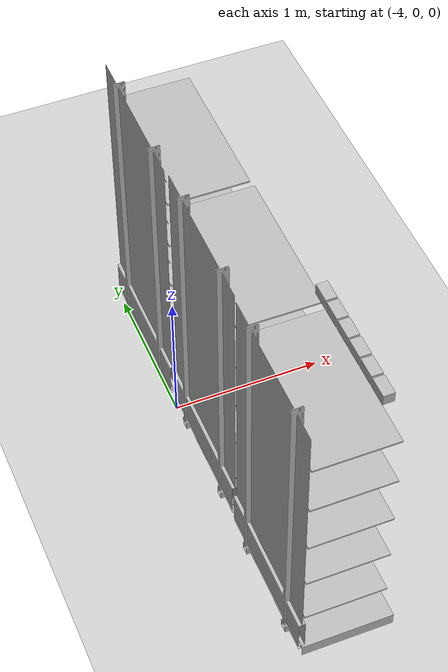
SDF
<sdf version="1.7">
 <world name="default">
  <model name="ground_plane">
   <static>1</static>
   <link name="link">
    <collision name="collision">
     <geometry><plane><normal>0 0 1</normal><size>100 100</size></plane></geometry>
     <surface>
      <contact><collide_bitmask>65535</collide_bitmask></contact>
      <friction><ode><mu>100</mu><mu2>50</mu2></ode></friction>
     </surface>
    </collision>
    <visual name="visual">
     <cast_shadows>0</cast_shadows>
     <geometry><plane><normal>0 0 1</normal><size>100 100</size></plane></geometry>
     <material>
      <script><uri>file://media/materials/scripts/gazebo.material</uri><name>Gazebo/Grey</name></script>
     </material>
    </visual>
   </link>
  </model>
  <model name="AH_shelf_filled_april">
   <static>1</static>
   <link name="link">
    <inertial>
     <mass>1</mass>
     <inertia><ixx>1</ixx><ixy>0</ixy><ixz>0</ixz><iyy>1</iyy><iyz>0</iyz><izz>1</izz></inertia>
    </inertial>
    <visual name="visual">
     <geometry><mesh><uri>model://AH_shelf/AH_shelf.dae</uri><scale>1 1 1</scale></mesh></geometry>
    </visual>
    <collision name="collision">
     <geometry><mesh><uri>model://AH_shelf/AH_shelf.dae</uri><scale>1 1 1</scale></mesh></geometry>
     <surface>
      <friction>
       <ode><mu>1</mu><mu2>1</mu2><fdir1>0 0 0</fdir1><slip1>0</slip1><slip2>0</slip2></ode>
       <torsional>
        <coefficient>1</coefficient>
        <patch_radius>0</patch_radius>
        <surface_radius>0</surface_radius>
        <use_patch_radius>1</use_patch_radius>
        <ode><slip>0</slip></ode>
       </torsional>
      </friction>
      <bounce><restitution_coefficient>0</restitution_coefficient><threshold>1e+06</threshold></bounce>
      <contact>
       <collide_without_contact>0</collide_without_contact>
       <collide_without_contact_bitmask>1</collide_without_contact_bitmask>
       <collide_bitmask>1</collide_bitmask>
       <ode>
        <soft_cfm>0</soft_cfm>
        <soft_erp>0.2</soft_erp>
        <kp>1e+13</kp>
        <kd>1</kd>
        <max_vel>0.01</max_vel>
        <min_depth>0</min_depth>
       </ode>
       <bullet>
        <split_impulse>1</split_impulse>
        <split_impulse_penetration_threshold>-0.01</split_impulse_penetration_threshold>
        <soft_cfm>0</soft_cfm>
        <soft_erp>0.2</soft_erp>
        <kp>1e+13</kp>
        <kd>1</kd>
       </bullet>
      </contact>
     </surface>
    </collision>
   </link>
   <pose>-4.01107 0.02378 0 0 0 -1.5708</pose>
  </model>
  <model name="AH_shelf_filled">
   <static>1</static>
   <link name="link">
    <inertial>
     <mass>1</mass>
     <inertia><ixx>1</ixx><ixy>0</ixy><ixz>0</ixz><iyy>1</iyy><iyz>0</iyz><izz>1</izz></inertia>
    </inertial>
    <visual name="visual">
     <geometry><mesh><uri>model://AH_shelf/AH_shelf.dae</uri><scale>1 1 1</scale></mesh></geometry>
    </visual>
    <collision name="collision">
     <geometry><mesh><uri>model://AH_shelf/AH_shelf.dae</uri><scale>1 1 1</scale></mesh></geometry>
     <surface>
      <friction>
       <ode><mu>1</mu><mu2>1</mu2><fdir1>0 0 0</fdir1><slip1>0</slip1><slip2>0</slip2></ode>
       <torsional>
        <coefficient>1</coefficient>
        <patch_radius>0</patch_radius>
        <surface_radius>0</surface_radius>
        <use_patch_radius>1</use_patch_radius>
        <ode><slip>0</slip></ode>
       </torsional>
      </friction>
      <bounce><restitution_coefficient>0</restitution_coefficient><threshold>1e+06</threshold></bounce>
      <contact>
       <collide_without_contact>0</collide_without_contact>
       <collide_without_contact_bitmask>1</collide_without_contact_bitmask>
       <collide_bitmask>1</collide_bitmask>
       <ode>
        <soft_cfm>0</soft_cfm>
        <soft_erp>0.2</soft_erp>
        <kp>1e+13</kp>
        <kd>1</kd>
        <max_vel>0.01</max_vel>
        <min_depth>0</min_depth>
       </ode>
       <bullet>
        <split_impulse>1</split_impulse>
        <split_impulse_penetration_threshold>-0.01</split_impulse_penetration_threshold>
        <soft_cfm>0</soft_cfm>
        <soft_erp>0.2</soft_erp>
        <kp>1e+13</kp>
        <kd>1</kd>
       </bullet>
      </contact>
     </surface>
    </collision>
   </link>
   <model name="board6">
    <pose>0 0.5 2.1 0 -0 0</pose>
    <static>0</static>
    <link name="AH_thee_mango::link_0">
     <inertial>
      <mass>0.1</mass>
      <inertia><ixx>0.0014</ixx><ixy>0</ixy><ixz>0</ixz><iyy>0.0014</iyy><iyz>0</iyz><izz>0.0028</izz></inertia>
     </inertial>
     <pose>0.142857 0 0 0 -0 1.57</pose>
     <visual name="visual">
      <geometry>
       <mesh><uri>model://AH_thee_mango/AH_thee_mango/AH_thee_mango.dae</uri><scale>1 1 1</scale></mesh>
      </geometry>
     </visual>
     <collision name="collision">
      <geometry>
       <mesh><uri>model://AH_thee_mango/AH_thee_mango/AH_thee_mango.dae</uri><scale>1 1 1</scale></mesh>
      </geometry>
      <surface>
       <friction>
        <ode><mu>1</mu><mu2>1</mu2><fdir1>0 0 0</fdir1><slip1>0</slip1><slip2>0</slip2></ode>
        <torsional>
         <coefficient>1</coefficient>
         <patch_radius>0</patch_radius>
         <surface_radius>0</surface_radius>
         <use_patch_radius>1</use_patch_radius>
         <ode><slip>0</slip></ode>
        </torsional>
       </friction>
       <bounce><restitution_coefficient>0</restitution_coefficient><threshold>1e+06</threshold></bounce>
       <contact>
        <collide_without_contact>0</collide_without_contact>
        <collide_without_contact_bitmask>1</collide_without_contact_bitmask>
        <collide_bitmask>1</collide_bitmask>
        <ode>
         <soft_cfm>0</soft_cfm>
         <soft_erp>0.2</soft_erp>
         <kp>1e+13</kp>
         <kd>1</kd>
         <max_vel>0.01</max_vel>
         <min_depth>0</min_depth>
        </ode>
        <bullet>
         <split_impulse>1</split_impulse>
         <split_impulse_penetration_threshold>-0.01</split_impulse_penetration_threshold>
         <soft_cfm>0</soft_cfm>
         <soft_erp>0.2</soft_erp>
         <kp>1e+13</kp>
         <kd>1</kd>
        </bullet>
       </contact>
      </surface>
     </collision>
    </link>
    <static>0</static>
    <link name="AH_thee_mango::link_0">
     <inertial>
      <mass>0.1</mass>
      <inertia><ixx>0.0014</ixx><ixy>0</ixy><ixz>0</ixz><iyy>0.0014</iyy><iyz>0</iyz><izz>0.0028</izz></inertia>
     </inertial>
     <pose>0.285714 0 0 0 -0 1.57</pose>
     <visual name="visual">
      <geometry>
       <mesh><uri>model://AH_thee_mango/AH_thee_mango/AH_thee_mango.dae</uri><scale>1 1 1</scale></mesh>
      </geometry>
     </visual>
     <collision name="collision">
      <geometry>
       <mesh><uri>model://AH_thee_mango/AH_thee_mango/AH_thee_mango.dae</uri><scale>1 1 1</scale></mesh>
      </geometry>
      <surface>
       <friction>
        <ode><mu>1</mu><mu2>1</mu2><fdir1>0 0 0</fdir1><slip1>0</slip1><slip2>0</slip2></ode>
        <torsional>
         <coefficient>1</coefficient>
         <patch_radius>0</patch_radius>
         <surface_radius>0</surface_radius>
         <use_patch_radius>1</use_patch_radius>
         <ode><slip>0</slip></ode>
        </torsional>
       </friction>
       <bounce><restitution_coefficient>0</restitution_coefficient><threshold>1e+06</threshold></bounce>
       <contact>
        <collide_without_contact>0</collide_without_contact>
        <collide_without_contact_bitmask>1</collide_without_contact_bitmask>
        <collide_bitmask>1</collide_bitmask>
        <ode>
         <soft_cfm>0</soft_cfm>
         <soft_erp>0.2</soft_erp>
         <kp>1e+13</kp>
         <kd>1</kd>
         <max_vel>0.01</max_vel>
         <min_depth>0</min_depth>
        </ode>
        <bullet>
         <split_impulse>1</split_impulse>
         <split_impulse_penetration_threshold>-0.01</split_impulse_penetration_threshold>
         <soft_cfm>0</soft_cfm>
         <soft_erp>0.2</soft_erp>
         <kp>1e+13</kp>
         <kd>1</kd>
        </bullet>
       </contact>
      </surface>
     </collision>
    </link>
    <static>0</static>
    <link name="AH_thee_mango::link_0">
     <inertial>
      <mass>0.1</mass>
      <inertia><ixx>0.0014</ixx><ixy>0</ixy><ixz>0</ixz><iyy>0.0014</iyy><iyz>0</iyz><izz>0.0028</izz></inertia>
     </inertial>
     <pose>0.428571 0 0 0 -0 1.57</pose>
     <visual name="visual">
      <geometry>
       <mesh><uri>model://AH_thee_mango/AH_thee_mango/AH_thee_mango.dae</uri><scale>1 1 1</scale></mesh>
      </geometry>
     </visual>
     <collision name="collision">
      <geometry>
       <mesh><uri>model://AH_thee_mango/AH_thee_mango/AH_thee_mango.dae</uri><scale>1 1 1</scale></mesh>
      </geometry>
      <surface>
       <friction>
        <ode><mu>1</mu><mu2>1</mu2><fdir1>0 0 0</fdir1><slip1>0</slip1><slip2>0</slip2></ode>
        <torsional>
         <coefficient>1</coefficient>
         <patch_radius>0</patch_radius>
         <surface_radius>0</surface_radius>
         <use_patch_radius>1</use_patch_radius>
         <ode><slip>0</slip></ode>
        </torsional>
       </friction>
       <bounce><restitution_coefficient>0</restitution_coefficient><threshold>1e+06</threshold></bounce>
       <contact>
        <collide_without_contact>0</collide_without_contact>
        <collide_without_contact_bitmask>1</collide_without_contact_bitmask>
        <collide_bitmask>1</collide_bitmask>
        <ode>
         <soft_cfm>0</soft_cfm>
         <soft_erp>0.2</soft_erp>
         <kp>1e+13</kp>
         <kd>1</kd>
         <max_vel>0.01</max_vel>
         <min_depth>0</min_depth>
        </ode>
        <bullet>
         <split_impulse>1</split_impulse>
         <split_impulse_penetration_threshold>-0.01</split_impulse_penetration_threshold>
         <soft_cfm>0</soft_cfm>
         <soft_erp>0.2</soft_erp>
         <kp>1e+13</kp>
         <kd>1</kd>
        </bullet>
       </contact>
      </surface>
     </collision>
    </link>
    <static>0</static>
    <link name="AH_thee_mango::link_0">
     <inertial>
      <mass>0.1</mass>
      <inertia><ixx>0.0014</ixx><ixy>0</ixy><ixz>0</ixz><iyy>0.0014</iyy><iyz>0</iyz><izz>0.0028</izz></inertia>
     </inertial>
     <pose>0.571429 0 0 0 -0 1.57</pose>
     <visual name="visual">
      <geometry>
       <mesh><uri>model://AH_thee_mango/AH_thee_mango/AH_thee_mango.dae</uri><scale>1 1 1</scale></mesh>
      </geometry>
     </visual>
     <collision name="collision">
      <geometry>
       <mesh><uri>model://AH_thee_mango/AH_thee_mango/AH_thee_mango.dae</uri><scale>1 1 1</scale></mesh>
      </geometry>
      <surface>
       <friction>
        <ode><mu>1</mu><mu2>1</mu2><fdir1>0 0 0</fdir1><slip1>0</slip1><slip2>0</slip2></ode>
        <torsional>
         <coefficient>1</coefficient>
         <patch_radius>0</patch_radius>
         <surface_radius>0</surface_radius>
         <use_patch_radius>1</use_patch_radius>
         <ode><slip>0</slip></ode>
        </torsional>
       </friction>
       <bounce><restitution_coefficient>0</restitution_coefficient><threshold>1e+06</threshold></bounce>
       <contact>
        <collide_without_contact>0</collide_without_contact>
        <collide_without_contact_bitmask>1</collide_without_contact_bitmask>
        <collide_bitmask>1</collide_bitmask>
        <ode>
         <soft_cfm>0</soft_cfm>
         <soft_erp>0.2</soft_erp>
         <kp>1e+13</kp>
         <kd>1</kd>
         <max_vel>0.01</max_vel>
         <min_depth>0</min_depth>
        </ode>
        <bullet>
         <split_impulse>1</split_impulse>
         <split_impulse_penetration_threshold>-0.01</split_impulse_penetration_threshold>
         <soft_cfm>0</soft_cfm>
         <soft_erp>0.2</soft_erp>
         <kp>1e+13</kp>
         <kd>1</kd>
        </bullet>
       </contact>
      </surface>
     </collision>
    </link>
    <static>0</static>
    <link name="AH_thee_mango::link_0">
     <inertial>
      <mass>0.1</mass>
      <inertia><ixx>0.0014</ixx><ixy>0</ixy><ixz>0</ixz><iyy>0.0014</iyy><iyz>0</iyz><izz>0.0028</izz></inertia>
     </inertial>
     <pose>0.714286 0 0 0 -0 1.57</pose>
     <visual name="visual">
      <geometry>
       <mesh><uri>model://AH_thee_mango/AH_thee_mango/AH_thee_mango.dae</uri><scale>1 1 1</scale></mesh>
      </geometry>
     </visual>
     <collision name="collision">
      <geometry>
       <mesh><uri>model://AH_thee_mango/AH_thee_mango/AH_thee_mango.dae</uri><scale>1 1 1</scale></mesh>
      </geometry>
      <surface>
       <friction>
        <ode><mu>1</mu><mu2>1</mu2><fdir1>0 0 0</fdir1><slip1>0</slip1><slip2>0</slip2></ode>
        <torsional>
         <coefficient>1</coefficient>
         <patch_radius>0</patch_radius>
         <surface_radius>0</surface_radius>
         <use_patch_radius>1</use_patch_radius>
         <ode><slip>0</slip></ode>
        </torsional>
       </friction>
       <bounce><restitution_coefficient>0</restitution_coefficient><threshold>1e+06</threshold></bounce>
       <contact>
        <collide_without_contact>0</collide_without_contact>
        <collide_without_contact_bitmask>1</collide_without_contact_bitmask>
        <collide_bitmask>1</collide_bitmask>
        <ode>
         <soft_cfm>0</soft_cfm>
         <soft_erp>0.2</soft_erp>
         <kp>1e+13</kp>
         <kd>1</kd>
         <max_vel>0.01</max_vel>
         <min_depth>0</min_depth>
        </ode>
        <bullet>
         <split_impulse>1</split_impulse>
         <split_impulse_penetration_threshold>-0.01</split_impulse_penetration_threshold>
         <soft_cfm>0</soft_cfm>
         <soft_erp>0.2</soft_erp>
         <kp>1e+13</kp>
         <kd>1</kd>
        </bullet>
       </contact>
      </surface>
     </collision>
    </link>
    <static>0</static>
    <link name="AH_thee_mango::link_0">
     <inertial>
      <mass>0.1</mass>
      <inertia><ixx>0.0014</ixx><ixy>0</ixy><ixz>0</ixz><iyy>0.0014</iyy><iyz>0</iyz><izz>0.0028</izz></inertia>
     </inertial>
     <pose>0.857143 0 0 0 -0 1.57</pose>
     <visual name="visual">
      <geometry>
       <mesh><uri>model://AH_thee_mango/AH_thee_mango/AH_thee_mango.dae</uri><scale>1 1 1</scale></mesh>
      </geometry>
     </visual>
     <collision name="collision">
      <geometry>
       <mesh><uri>model://AH_thee_mango/AH_thee_mango/AH_thee_mango.dae</uri><scale>1 1 1</scale></mesh>
      </geometry>
      <surface>
       <friction>
        <ode><mu>1</mu><mu2>1</mu2><fdir1>0 0 0</fdir1><slip1>0</slip1><slip2>0</slip2></ode>
        <torsional>
         <coefficient>1</coefficient>
         <patch_radius>0</patch_radius>
         <surface_radius>0</surface_radius>
         <use_patch_radius>1</use_patch_radius>
         <ode><slip>0</slip></ode>
        </torsional>
       </friction>
       <bounce><restitution_coefficient>0</restitution_coefficient><threshold>1e+06</threshold></bounce>
       <contact>
        <collide_without_contact>0</collide_without_contact>
        <collide_without_contact_bitmask>1</collide_without_contact_bitmask>
        <collide_bitmask>1</collide_bitmask>
        <ode>
         <soft_cfm>0</soft_cfm>
         <soft_erp>0.2</soft_erp>
         <kp>1e+13</kp>
         <kd>1</kd>
         <max_vel>0.01</max_vel>
         <min_depth>0</min_depth>
        </ode>
        <bullet>
         <split_impulse>1</split_impulse>
         <split_impulse_penetration_threshold>-0.01</split_impulse_penetration_threshold>
         <soft_cfm>0</soft_cfm>
         <soft_erp>0.2</soft_erp>
         <kp>1e+13</kp>
         <kd>1</kd>
        </bullet>
       </contact>
      </surface>
     </collision>
    </link>
   </model>
   <pose>-4.02831 -1.03085 0 0 0 -1.5708</pose>
  </model>
  <model name="AH_shelf_filled_0">
   <static>1</static>
   <link name="link">
    <inertial>
     <mass>1</mass>
     <inertia><ixx>1</ixx><ixy>0</ixy><ixz>0</ixz><iyy>1</iyy><iyz>0</iyz><izz>1</izz></inertia>
    </inertial>
    <visual name="visual">
     <geometry><mesh><uri>model://AH_shelf/AH_shelf.dae</uri><scale>1 1 1</scale></mesh></geometry>
    </visual>
    <collision name="collision">
     <geometry><mesh><uri>model://AH_shelf/AH_shelf.dae</uri><scale>1 1 1</scale></mesh></geometry>
     <surface>
      <friction>
       <ode><mu>1</mu><mu2>1</mu2><fdir1>0 0 0</fdir1><slip1>0</slip1><slip2>0</slip2></ode>
       <torsional>
        <coefficient>1</coefficient>
        <patch_radius>0</patch_radius>
        <surface_radius>0</surface_radius>
        <use_patch_radius>1</use_patch_radius>
        <ode><slip>0</slip></ode>
       </torsional>
      </friction>
      <bounce><restitution_coefficient>0</restitution_coefficient><threshold>1e+06</threshold></bounce>
      <contact>
       <collide_without_contact>0</collide_without_contact>
       <collide_without_contact_bitmask>1</collide_without_contact_bitmask>
       <collide_bitmask>1</collide_bitmask>
       <ode>
        <soft_cfm>0</soft_cfm>
        <soft_erp>0.2</soft_erp>
        <kp>1e+13</kp>
        <kd>1</kd>
        <max_vel>0.01</max_vel>
        <min_depth>0</min_depth>
       </ode>
       <bullet>
        <split_impulse>1</split_impulse>
        <split_impulse_penetration_threshold>-0.01</split_impulse_penetration_threshold>
        <soft_cfm>0</soft_cfm>
        <soft_erp>0.2</soft_erp>
        <kp>1e+13</kp>
        <kd>1</kd>
       </bullet>
      </contact>
     </surface>
    </collision>
   </link>
   <pose>-4.01662 1.07063 0 0 0 -1.5708</pose>
  </model>
  <model name="AH_shelf_filled_1">
   <static>1</static>
   <model name="board1">
    <pose>0 0.5 0.25 0 -0 0</pose>
    <static>0</static>
    <link name="AH_hagelslag_puur::link_0">
     <inertial>
      <mass>0.1</mass>
      <inertia><ixx>0.0014</ixx><ixy>0</ixy><ixz>0</ixz><iyy>0.0014</iyy><iyz>0</iyz><izz>0.0028</izz></inertia>
     </inertial>
     <pose>0.111111 0 0 0 -0 1.57</pose>
     <visual name="visual">
      <geometry>
       <mesh><uri>model://AH_hagelslag_puur/AH_hagelslag_puur/AH_hagelslag_puur.dae</uri><scale>1 1 1</scale></mesh>
      </geometry>
     </visual>
     <collision name="collision">
      <geometry>
       <mesh><uri>model://AH_hagelslag_puur/AH_hagelslag_puur/AH_hagelslag_puur.dae</uri><scale>1 1 1</scale></mesh>
      </geometry>
      <surface>
       <friction>
        <ode><mu>1</mu><mu2>1</mu2><fdir1>0 0 0</fdir1><slip1>0</slip1><slip2>0</slip2></ode>
        <torsional>
         <coefficient>1</coefficient>
         <patch_radius>0</patch_radius>
         <surface_radius>0</surface_radius>
         <use_patch_radius>1</use_patch_radius>
         <ode><slip>0</slip></ode>
        </torsional>
       </friction>
       <bounce><restitution_coefficient>0</restitution_coefficient><threshold>1e+06</threshold></bounce>
       <contact>
        <collide_without_contact>0</collide_without_contact>
        <collide_without_contact_bitmask>1</collide_without_contact_bitmask>
        <collide_bitmask>1</collide_bitmask>
        <ode>
         <soft_cfm>0</soft_cfm>
         <soft_erp>0.2</soft_erp>
         <kp>1e+13</kp>
         <kd>1</kd>
         <max_vel>0.01</max_vel>
         <min_depth>0</min_depth>
        </ode>
        <bullet>
         <split_impulse>1</split_impulse>
         <split_impulse_penetration_threshold>-0.01</split_impulse_penetration_threshold>
         <soft_cfm>0</soft_cfm>
         <soft_erp>0.2</soft_erp>
         <kp>1e+13</kp>
         <kd>1</kd>
        </bullet>
       </contact>
      </surface>
     </collision>
    </link>
    <static>0</static>
    <link name="AH_hagelslag_puur::link_0">
     <inertial>
      <mass>0.1</mass>
      <inertia><ixx>0.0014</ixx><ixy>0</ixy><ixz>0</ixz><iyy>0.0014</iyy><iyz>0</iyz><izz>0.0028</izz></inertia>
     </inertial>
     <pose>0.222222 0 0 0 -0 1.57</pose>
     <visual name="visual">
      <geometry>
       <mesh><uri>model://AH_hagelslag_puur/AH_hagelslag_puur/AH_hagelslag_puur.dae</uri><scale>1 1 1</scale></mesh>
      </geometry>
     </visual>
     <collision name="collision">
      <geometry>
       <mesh><uri>model://AH_hagelslag_puur/AH_hagelslag_puur/AH_hagelslag_puur.dae</uri><scale>1 1 1</scale></mesh>
      </geometry>
      <surface>
       <friction>
        <ode><mu>1</mu><mu2>1</mu2><fdir1>0 0 0</fdir1><slip1>0</slip1><slip2>0</slip2></ode>
        <torsional>
         <coefficient>1</coefficient>
         <patch_radius>0</patch_radius>
         <surface_radius>0</surface_radius>
         <use_patch_radius>1</use_patch_radius>
         <ode><slip>0</slip></ode>
        </torsional>
       </friction>
       <bounce><restitution_coefficient>0</restitution_coefficient><threshold>1e+06</threshold></bounce>
       <contact>
        <collide_without_contact>0</collide_without_contact>
        <collide_without_contact_bitmask>1</collide_without_contact_bitmask>
        <collide_bitmask>1</collide_bitmask>
        <ode>
         <soft_cfm>0</soft_cfm>
         <soft_erp>0.2</soft_erp>
         <kp>1e+13</kp>
         <kd>1</kd>
         <max_vel>0.01</max_vel>
         <min_depth>0</min_depth>
        </ode>
        <bullet>
         <split_impulse>1</split_impulse>
         <split_impulse_penetration_threshold>-0.01</split_impulse_penetration_threshold>
         <soft_cfm>0</soft_cfm>
         <soft_erp>0.2</soft_erp>
         <kp>1e+13</kp>
         <kd>1</kd>
        </bullet>
       </contact>
      </surface>
     </collision>
    </link>
    <static>0</static>
    <link name="AH_hagelslag_puur::link_0">
     <inertial>
      <mass>0.1</mass>
      <inertia><ixx>0.0014</ixx><ixy>0</ixy><ixz>0</ixz><iyy>0.0014</iyy><iyz>0</iyz><izz>0.0028</izz></inertia>
     </inertial>
     <pose>0.333333 0 0 0 -0 1.57</pose>
     <visual name="visual">
      <geometry>
       <mesh><uri>model://AH_hagelslag_puur/AH_hagelslag_puur/AH_hagelslag_puur.dae</uri><scale>1 1 1</scale></mesh>
      </geometry>
     </visual>
     <collision name="collision">
      <geometry>
       <mesh><uri>model://AH_hagelslag_puur/AH_hagelslag_puur/AH_hagelslag_puur.dae</uri><scale>1 1 1</scale></mesh>
      </geometry>
      <surface>
       <friction>
        <ode><mu>1</mu><mu2>1</mu2><fdir1>0 0 0</fdir1><slip1>0</slip1><slip2>0</slip2></ode>
        <torsional>
         <coefficient>1</coefficient>
         <patch_radius>0</patch_radius>
         <surface_radius>0</surface_radius>
         <use_patch_radius>1</use_patch_radius>
         <ode><slip>0</slip></ode>
        </torsional>
       </friction>
       <bounce><restitution_coefficient>0</restitution_coefficient><threshold>1e+06</threshold></bounce>
       <contact>
        <collide_without_contact>0</collide_without_contact>
        <collide_without_contact_bitmask>1</collide_without_contact_bitmask>
        <collide_bitmask>1</collide_bitmask>
        <ode>
         <soft_cfm>0</soft_cfm>
         <soft_erp>0.2</soft_erp>
         <kp>1e+13</kp>
         <kd>1</kd>
         <max_vel>0.01</max_vel>
         <min_depth>0</min_depth>
        </ode>
        <bullet>
         <split_impulse>1</split_impulse>
         <split_impulse_penetration_threshold>-0.01</split_impulse_penetration_threshold>
         <soft_cfm>0</soft_cfm>
         <soft_erp>0.2</soft_erp>
         <kp>1e+13</kp>
         <kd>1</kd>
        </bullet>
       </contact>
      </surface>
     </collision>
    </link>
    <static>0</static>
    <link name="AH_hagelslag_puur::link_0">
     <inertial>
      <mass>0.1</mass>
      <inertia><ixx>0.0014</ixx><ixy>0</ixy><ixz>0</ixz><iyy>0.0014</iyy><iyz>0</iyz><izz>0.0028</izz></inertia>
     </inertial>
     <pose>0.444444 0 0 0 -0 1.57</pose>
     <visual name="visual">
      <geometry>
       <mesh><uri>model://AH_hagelslag_puur/AH_hagelslag_puur/AH_hagelslag_puur.dae</uri><scale>1 1 1</scale></mesh>
      </geometry>
     </visual>
     <collision name="collision">
      <geometry>
       <mesh><uri>model://AH_hagelslag_puur/AH_hagelslag_puur/AH_hagelslag_puur.dae</uri><scale>1 1 1</scale></mesh>
      </geometry>
      <surface>
       <friction>
        <ode><mu>1</mu><mu2>1</mu2><fdir1>0 0 0</fdir1><slip1>0</slip1><slip2>0</slip2></ode>
        <torsional>
         <coefficient>1</coefficient>
         <patch_radius>0</patch_radius>
         <surface_radius>0</surface_radius>
         <use_patch_radius>1</use_patch_radius>
         <ode><slip>0</slip></ode>
        </torsional>
       </friction>
       <bounce><restitution_coefficient>0</restitution_coefficient><threshold>1e+06</threshold></bounce>
       <contact>
        <collide_without_contact>0</collide_without_contact>
        <collide_without_contact_bitmask>1</collide_without_contact_bitmask>
        <collide_bitmask>1</collide_bitmask>
        <ode>
         <soft_cfm>0</soft_cfm>
         <soft_erp>0.2</soft_erp>
         <kp>1e+13</kp>
         <kd>1</kd>
         <max_vel>0.01</max_vel>
         <min_depth>0</min_depth>
        </ode>
        <bullet>
         <split_impulse>1</split_impulse>
         <split_impulse_penetration_threshold>-0.01</split_impulse_penetration_threshold>
         <soft_cfm>0</soft_cfm>
         <soft_erp>0.2</soft_erp>
         <kp>1e+13</kp>
         <kd>1</kd>
        </bullet>
       </contact>
      </surface>
     </collision>
    </link>
    <static>0</static>
    <link name="AH_hagelslag_puur::link_0">
     <inertial>
      <mass>0.1</mass>
      <inertia><ixx>0.0014</ixx><ixy>0</ixy><ixz>0</ixz><iyy>0.0014</iyy><iyz>0</iyz><izz>0.0028</izz></inertia>
     </inertial>
     <pose>0.555556 0 0 0 -0 1.57</pose>
     <visual name="visual">
      <geometry>
       <mesh><uri>model://AH_hagelslag_puur/AH_hagelslag_puur/AH_hagelslag_puur.dae</uri><scale>1 1 1</scale></mesh>
      </geometry>
     </visual>
     <collision name="collision">
      <geometry>
       <mesh><uri>model://AH_hagelslag_puur/AH_hagelslag_puur/AH_hagelslag_puur.dae</uri><scale>1 1 1</scale></mesh>
      </geometry>
      <surface>
       <friction>
        <ode><mu>1</mu><mu2>1</mu2><fdir1>0 0 0</fdir1><slip1>0</slip1><slip2>0</slip2></ode>
        <torsional>
         <coefficient>1</coefficient>
         <patch_radius>0</patch_radius>
         <surface_radius>0</surface_radius>
         <use_patch_radius>1</use_patch_radius>
         <ode><slip>0</slip></ode>
        </torsional>
       </friction>
       <bounce><restitution_coefficient>0</restitution_coefficient><threshold>1e+06</threshold></bounce>
       <contact>
        <collide_without_contact>0</collide_without_contact>
        <collide_without_contact_bitmask>1</collide_without_contact_bitmask>
        <collide_bitmask>1</collide_bitmask>
        <ode>
         <soft_cfm>0</soft_cfm>
         <soft_erp>0.2</soft_erp>
         <kp>1e+13</kp>
         <kd>1</kd>
         <max_vel>0.01</max_vel>
         <min_depth>0</min_depth>
        </ode>
        <bullet>
         <split_impulse>1</split_impulse>
         <split_impulse_penetration_threshold>-0.01</split_impulse_penetration_threshold>
         <soft_cfm>0</soft_cfm>
         <soft_erp>0.2</soft_erp>
         <kp>1e+13</kp>
         <kd>1</kd>
        </bullet>
       </contact>
      </surface>
     </collision>
    </link>
    <static>0</static>
    <link name="AH_hagelslag_puur::link_0">
     <inertial>
      <mass>0.1</mass>
      <inertia><ixx>0.0014</ixx><ixy>0</ixy><ixz>0</ixz><iyy>0.0014</iyy><iyz>0</iyz><izz>0.0028</izz></inertia>
     </inertial>
     <pose>0.666667 0 0 0 -0 1.57</pose>
     <visual name="visual">
      <geometry>
       <mesh><uri>model://AH_hagelslag_puur/AH_hagelslag_puur/AH_hagelslag_puur.dae</uri><scale>1 1 1</scale></mesh>
      </geometry>
     </visual>
     <collision name="collision">
      <geometry>
       <mesh><uri>model://AH_hagelslag_puur/AH_hagelslag_puur/AH_hagelslag_puur.dae</uri><scale>1 1 1</scale></mesh>
      </geometry>
      <surface>
       <friction>
        <ode><mu>1</mu><mu2>1</mu2><fdir1>0 0 0</fdir1><slip1>0</slip1><slip2>0</slip2></ode>
        <torsional>
         <coefficient>1</coefficient>
         <patch_radius>0</patch_radius>
         <surface_radius>0</surface_radius>
         <use_patch_radius>1</use_patch_radius>
         <ode><slip>0</slip></ode>
        </torsional>
       </friction>
       <bounce><restitution_coefficient>0</restitution_coefficient><threshold>1e+06</threshold></bounce>
       <contact>
        <collide_without_contact>0</collide_without_contact>
        <collide_without_contact_bitmask>1</collide_without_contact_bitmask>
        <collide_bitmask>1</collide_bitmask>
        <ode>
         <soft_cfm>0</soft_cfm>
         <soft_erp>0.2</soft_erp>
         <kp>1e+13</kp>
         <kd>1</kd>
         <max_vel>0.01</max_vel>
         <min_depth>0</min_depth>
        </ode>
        <bullet>
         <split_impulse>1</split_impulse>
         <split_impulse_penetration_threshold>-0.01</split_impulse_penetration_threshold>
         <soft_cfm>0</soft_cfm>
         <soft_erp>0.2</soft_erp>
         <kp>1e+13</kp>
         <kd>1</kd>
        </bullet>
       </contact>
      </surface>
     </collision>
    </link>
    <static>0</static>
    <link name="AH_hagelslag_puur::link_0">
     <inertial>
      <mass>0.1</mass>
      <inertia><ixx>0.0014</ixx><ixy>0</ixy><ixz>0</ixz><iyy>0.0014</iyy><iyz>0</iyz><izz>0.0028</izz></inertia>
     </inertial>
     <pose>0.777778 0 0 0 -0 1.57</pose>
     <visual name="visual">
      <geometry>
       <mesh><uri>model://AH_hagelslag_puur/AH_hagelslag_puur/AH_hagelslag_puur.dae</uri><scale>1 1 1</scale></mesh>
      </geometry>
     </visual>
     <collision name="collision">
      <geometry>
       <mesh><uri>model://AH_hagelslag_puur/AH_hagelslag_puur/AH_hagelslag_puur.dae</uri><scale>1 1 1</scale></mesh>
      </geometry>
      <surface>
       <friction>
        <ode><mu>1</mu><mu2>1</mu2><fdir1>0 0 0</fdir1><slip1>0</slip1><slip2>0</slip2></ode>
        <torsional>
         <coefficient>1</coefficient>
         <patch_radius>0</patch_radius>
         <surface_radius>0</surface_radius>
         <use_patch_radius>1</use_patch_radius>
         <ode><slip>0</slip></ode>
        </torsional>
       </friction>
       <bounce><restitution_coefficient>0</restitution_coefficient><threshold>1e+06</threshold></bounce>
       <contact>
        <collide_without_contact>0</collide_without_contact>
        <collide_without_contact_bitmask>1</collide_without_contact_bitmask>
        <collide_bitmask>1</collide_bitmask>
        <ode>
         <soft_cfm>0</soft_cfm>
         <soft_erp>0.2</soft_erp>
         <kp>1e+13</kp>
         <kd>1</kd>
         <max_vel>0.01</max_vel>
         <min_depth>0</min_depth>
        </ode>
        <bullet>
         <split_impulse>1</split_impulse>
         <split_impulse_penetration_threshold>-0.01</split_impulse_penetration_threshold>
         <soft_cfm>0</soft_cfm>
         <soft_erp>0.2</soft_erp>
         <kp>1e+13</kp>
         <kd>1</kd>
        </bullet>
       </contact>
      </surface>
     </collision>
    </link>
    <static>0</static>
    <link name="AH_hagelslag_puur::link_0">
     <inertial>
      <mass>0.1</mass>
      <inertia><ixx>0.0014</ixx><ixy>0</ixy><ixz>0</ixz><iyy>0.0014</iyy><iyz>0</iyz><izz>0.0028</izz></inertia>
     </inertial>
     <pose>0.888889 0 0 0 -0 1.57</pose>
     <visual name="visual">
      <geometry>
       <mesh><uri>model://AH_hagelslag_puur/AH_hagelslag_puur/AH_hagelslag_puur.dae</uri><scale>1 1 1</scale></mesh>
      </geometry>
     </visual>
     <collision name="collision">
      <geometry>
       <mesh><uri>model://AH_hagelslag_puur/AH_hagelslag_puur/AH_hagelslag_puur.dae</uri><scale>1 1 1</scale></mesh>
      </geometry>
      <surface>
       <friction>
        <ode><mu>1</mu><mu2>1</mu2><fdir1>0 0 0</fdir1><slip1>0</slip1><slip2>0</slip2></ode>
        <torsional>
         <coefficient>1</coefficient>
         <patch_radius>0</patch_radius>
         <surface_radius>0</surface_radius>
         <use_patch_radius>1</use_patch_radius>
         <ode><slip>0</slip></ode>
        </torsional>
       </friction>
       <bounce><restitution_coefficient>0</restitution_coefficient><threshold>1e+06</threshold></bounce>
       <contact>
        <collide_without_contact>0</collide_without_contact>
        <collide_without_contact_bitmask>1</collide_without_contact_bitmask>
        <collide_bitmask>1</collide_bitmask>
        <ode>
         <soft_cfm>0</soft_cfm>
         <soft_erp>0.2</soft_erp>
         <kp>1e+13</kp>
         <kd>1</kd>
         <max_vel>0.01</max_vel>
         <min_depth>0</min_depth>
        </ode>
        <bullet>
         <split_impulse>1</split_impulse>
         <split_impulse_penetration_threshold>-0.01</split_impulse_penetration_threshold>
         <soft_cfm>0</soft_cfm>
         <soft_erp>0.2</soft_erp>
         <kp>1e+13</kp>
         <kd>1</kd>
        </bullet>
       </contact>
      </surface>
     </collision>
    </link>
   </model>
   <pose>-4.02675 2.11392 0 0 0 -1.5708</pose>
  </model>
 </world>
</sdf>
